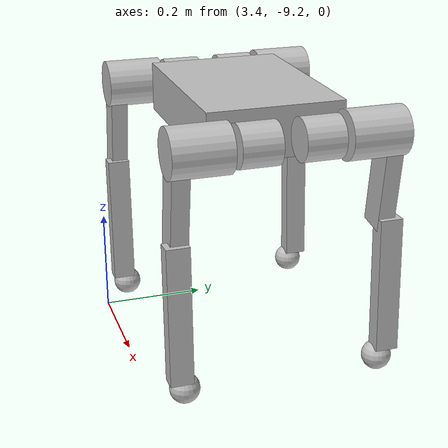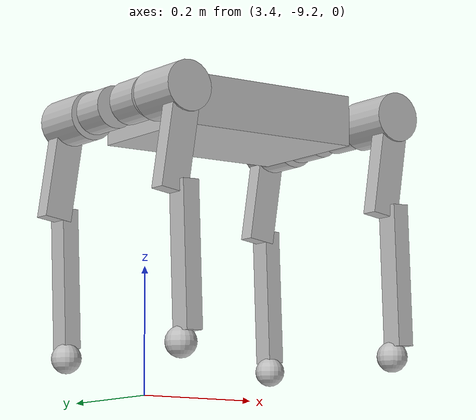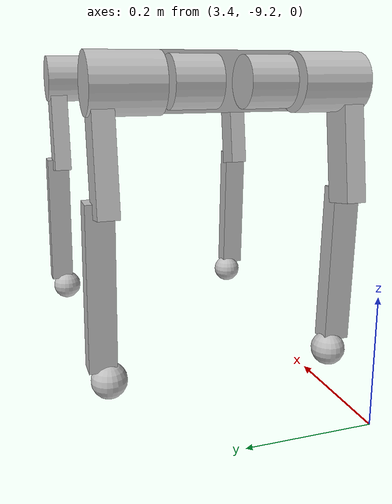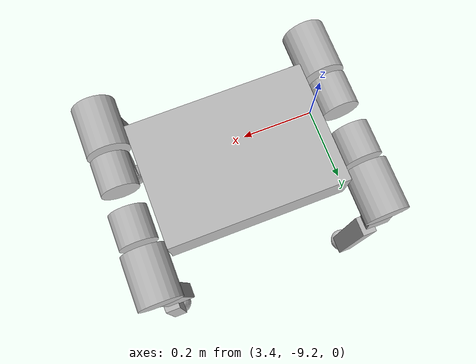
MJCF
<mujoco model="z2">
  <compiler angle="radian"/>
  <!-- 优化的仿真参数 -->
  <option timestep="0.005" iterations="50" solver="Newton" tolerance="1e-10"/>

  <!-- 默认参数设置 -->
  <default>
    <joint damping="0.1" frictionloss="0.01"/>
    <geom friction="0.8 0.02 0.01" margin="0.001" gap="0.0"/>
    <motor ctrllimited="true" ctrlrange="-33.5 33.5"/>
  </default>
  <!-- 资源 -->
  <asset>
    <texture name="grid" type="2d" builtin="checker" rgb1=".1 .2 .3" rgb2=".2 .3 .4" width="300" height="300"/>
    <material name="grid" texture="grid" texrepeat="8 8" reflectance=".2"/>
  </asset>
<worldbody>
    <body name="base_link" pos="3.7 -9.0 0.5">
      <freejoint name="floating_base"/>
      <camera name="chase_cam" pos="-3 0 3" xyaxes="0 -1 0 1 0 1"/>
      <inertial pos="-0.000191 0.0000032 0.0006969" mass="6.32" fullinertia="0.043000 0.094133 0.121805 0 0 0"/>

      <geom name="trunk" size="0.171 0.1185 0.0434996" pos="-0.0002 0 0.0006991" type="box" rgba="0.749024 0.749024 0.749024 1"/>

      <body name="FL_hip" pos="0.16 0.075 0">
        <inertial pos="0.0503824 -0.0220598 -0.0002227" mass="0.6" fullinertia="0.000554 0.000603 0.000641 0.000086 0.000005 -0.000002"/>
        <joint name="FL_hip_joint" pos="0 0 0" axis="1 0 0" range="-0.5 0.5" actuatorfrcrange="-30 30"/>
        <geom size="0.0366 0.0334" pos="0.057684 -0.0226742 0.0010791" quat="0.707107 0.707107 0 0" type="cylinder" rgba="0.752941 0.752941 0.752941 1"/>
        <body name="FL_thigh" pos="0.055 0.0842 0">
          <inertial pos="-0.007049 0.002918 -0.050395" mass="1.013" fullinertia="0.005164 0.004784 0.001313 0.000096 -0.000452 0.000863"/>
          <joint name="FL_thigh_joint" pos="0 0 0" axis="0 1 0" range="-0.1 3.2" actuatorfrcrange="-30 30"/>
          <geom size="0.0422 0.05025" pos="0 -0.012625 0" quat="0.707107 0.707107 0 0" type="cylinder" rgba="0.752941 0.752941 0.752941 1"/>
          <geom size="0.025 0.015 0.095" pos="-0.011032 0.0188 -0.077453" quat="0.997189 0 0.0749297 0" type="box" rgba="0.752941 0.752941 0.752941 1"/>
          <body name="FL_calf" pos="0 0.01475 -0.2">
            <inertial pos="0.0081239 0.0001028 -0.0992134" mass="0.1421" fullinertia="0.000888 0.000902 0.000025 0 0.000020 0.000001"/>
            <joint name="FL_calf_joint" pos="0 0 0" axis="0 1 0" range="-2.69653 -0.916298" actuatorfrcrange="-30 30"/>
            <geom size="0.12015 0.02 0.015" pos="0.002557 0.009165 -0.072349" quat="0.718746 0 0.695273 0" type="box" rgba="0.752941 0.752941 0.752941 1"/>
            <body name="FL_foot" pos="0 0.0002 -0.21012">
              <inertial pos="-0.0029924 -0.0000316 -0.0056685" mass="0.0241" fullinertia="0.000005 0.000005 0.000006 0 0.000001 0"/>
              <geom name="FL_foot" size="0.026" pos="0.000003 -0.00015 0.00064" rgba="0.752941 0.752941 0.752941 1" friction="1.2 0.05 0.01"/>
            </body>
          </body>
        </body>
      </body>
      <body name="RL_hip" pos="-0.16 0.075 0.0006991">
        <inertial pos="-0.0506619 -0.0222818 -0.0002469" mass="0.6" fullinertia="0.000554 0.000603 0.000641 -0.000085 -0.000005 -0.000002"/>
        <joint name="RL_hip_joint" pos="0 0 0" axis="1 0 0" range="-0.5 0.5" actuatorfrcrange="-30 30"/>
        <geom size="0.0366 0.0334" pos="-0.057684 -0.0226742 0.0010791" quat="0.707107 0.707107 0 0" type="cylinder" rgba="0.752941 0.752941 0.752941 1"/>
        <body name="RL_thigh" pos="-0.0556459 0.084 -0.0002675">
          <inertial pos="-0.007049 0.003118 -0.050395" mass="1.013" fullinertia="0.005164 0.004784 0.001313 0.000096 -0.000452 0.000863"/>
          <joint name="RL_thigh_joint" pos="0 0 0" axis="0 1 0" range="-0.1 3.2" actuatorfrcrange="-30 30"/>
          <geom size="0.0422 0.05025" pos="0 -0.012625 0" quat="0.707107 0.707107 0 0" type="cylinder" rgba="0.752941 0.752941 0.752941 1"/>
          <geom size="0.025 0.015 0.095" pos="-0.011032 0.0188 -0.077453" quat="0.997189 0 0.0749297 0" type="box" rgba="0.752941 0.752941 0.752941 1"/>
          <body name="RL_calf" pos="0 0.01495 -0.2">
            <inertial pos="0.0081239 0.0001028 -0.0992134" mass="0.1421" fullinertia="0.000888 0.000902 0.000025 0 0.000020 0.000001"/>
            <joint name="RL_calf_joint" pos="0 0 0" axis="0 1 0" range="-2.69653 -0.916298" actuatorfrcrange="-30 30"/>
            <geom size="0.12015 0.02 0.015" pos="0.002557 0.009165 -0.072349" quat="0.718746 0 0.695273 0" type="box" rgba="0.752941 0.752941 0.752941 1"/>
            <body name="RL_foot" pos="0 0.0002 -0.2101231">
              <inertial pos="-0.0029924 -0.0000316 -0.0056685" mass="0.0241" fullinertia="0.000005 0.000005 0.000006 0 0.000001 0"/>
              <geom name="RL_foot" size="0.026" pos="0.000003 -0.00015 0.00064" rgba="0.752941 0.752941 0.752941 1" friction="1.2 0.05 0.01"/>
            </body>
          </body>
        </body>
      </body>
      <body name="FR_hip" pos="0.16 -0.075 0">
        <inertial pos="0.0506296 0.0221701 -0.000239" mass="0.6" fullinertia="0.000554 0.000603 0.000641 -0.000086 0.000005 0.000002"/>
        <joint name="FR_hip_joint" pos="0 0 0" axis="1 0 0" range="-0.5 0.5" actuatorfrcrange="-30 30"/>
        <geom size="0.0366 0.0334" pos="0.057684 0.0226742 0.0010791" quat="0.707107 0.707107 0 0" type="cylinder" rgba="0.752941 0.752941 0.752941 1"/>
        <body name="FR_thigh" pos="0.055 -0.084 0">
          <inertial pos="-0.007071 -0.003119 -0.050404" mass="1.013" fullinertia="0.005163 0.004783 0.001312 -0.000094 -0.000451 -0.000862"/>
          <joint name="FR_thigh_joint" pos="0 0 0" axis="0 1 0" range="-0.1 3.2" actuatorfrcrange="-30 30"/>
          <geom size="0.0422 0.05025" pos="0 0.012625 0" quat="0.707107 0.707107 0 0" type="cylinder" rgba="0.752941 0.752941 0.752941 1"/>
          <geom size="0.025 0.015 0.095" pos="-0.011032 -0.0188 -0.077453" quat="0.997189 0 0.0749297 0" type="box" rgba="0.752941 0.752941 0.752941 1"/>
          <body name="FR_calf" pos="0 -0.01495 -0.2">
            <inertial pos="0.0081241 -0.0001029 -0.0992124" mass="0.1421" fullinertia="0.000888 0.000902 0.000025 0 0.000020 -0.000001"/>
            <joint name="FR_calf_joint" pos="0 0 0" axis="0 1 0" range="-2.69653 -0.916298" actuatorfrcrange="-30 30"/>
            <geom size="0.12015 0.02 0.015" pos="0.002557 -0.009165 -0.072349" quat="0.718746 0 0.695273 0" type="box" rgba="0.752941 0.752941 0.752941 1"/>
            <body name="FR_foot" pos="0 -0.0002 -0.21012">
              <inertial pos="-0.0029924 0.0000316 -0.0056685" mass="0.0241" fullinertia="0.000005 0.000005 0.000006 0 0.000001 0"/>
              <geom name="FR_foot" size="0.026" pos="0.000003 0.00015 0.00064" rgba="0.752941 0.752941 0.752941 1" friction="1.2 0.05 0.01"/>
            </body>
          </body>
        </body>
      </body>
      <body name="RR_hip" pos="-0.16 -0.075 0">
        <inertial pos="-0.0506297 0.0221701 -0.0002391" mass="0.6" fullinertia="0.000554 0.000603 0.000641 0.000086 -0.000005 0.000002"/>
        <joint name="RR_hip_joint" pos="0 0 0" axis="1 0 0" range="-0.5 0.5" actuatorfrcrange="-30 30"/>
        <geom size="0.0366 0.0334" pos="-0.057684 0.0226742 0.0010791" quat="0.707107 0.707107 0 0" type="cylinder" rgba="0.752941 0.752941 0.752941 1"/>
        <body name="RR_thigh" pos="-0.055 -0.0842 0">
          <inertial pos="-0.006854 -0.003352 -0.049844" mass="1.013" fullinertia="0.005163 0.004783 0.001312 -0.000094 -0.000451 -0.000862"/>
          <joint name="RR_thigh_joint" pos="0 0 0" axis="0 1 0" range="-0.1 3.2" actuatorfrcrange="-30 30"/>
          <geom size="0.0422 0.05025" pos="0 0.012625 0" quat="0.707107 0.707107 0 0" type="cylinder" rgba="0.752941 0.752941 0.752941 1"/>
          <geom size="0.025 0.015 0.095" pos="-0.011032 -0.0188 -0.077453" quat="0.997189 0 0.0749297 0" type="box" rgba="0.752941 0.752941 0.752941 1"/>
          <body name="RR_calf" pos="0 -0.01475 -0.2">
            <inertial pos="0.0081241 -0.0001029 -0.0992124" mass="0.1421" fullinertia="0.000888 0.000902 0.000025 0 0.000020 -0.000001"/>
            <joint name="RR_calf_joint" pos="0 0 0" axis="0 1 0" range="-2.69653 -0.916298" actuatorfrcrange="-30 30"/>
            <geom size="0.12015 0.02 0.015" pos="0.002557 -0.009165 -0.072349" quat="0.718746 0 0.695273 0" type="box" rgba="0.752941 0.752941 0.752941 1"/>
            <body name="RR_foot" pos="0 -0.0002 -0.21012">
              <inertial pos="-0.0029924 0.0000316 -0.0056685" mass="0.0241" fullinertia="0.000005 0.000005 0.000006 0 0.000001 0"/>
              <geom name="RR_foot" size="0.026" pos="0.000003 0.00015 0.00064" rgba="0.752941 0.752941 0.752941 1" friction="1.2 0.05 0.01"/>
            </body>
          </body>
        </body>
      </body>
    </body>
  </worldbody>
  <actuator>
    <!-- 前左腿电机 -->
    <motor name="FL_hip_motor" joint="FL_hip_joint" gear="1"/>
    <motor name="FL_thigh_motor" joint="FL_thigh_joint" gear="1"/>
    <motor name="FL_calf_motor" joint="FL_calf_joint" gear="1"/>

    <!-- 后左腿电机 -->
    <motor name="RL_hip_motor" joint="RL_hip_joint" gear="1"/>
    <motor name="RL_thigh_motor" joint="RL_thigh_joint" gear="1"/>
    <motor name="RL_calf_motor" joint="RL_calf_joint" gear="1"/>

    <!-- 前右腿电机 -->
    <motor name="FR_hip_motor" joint="FR_hip_joint" gear="1"/>
    <motor name="FR_thigh_motor" joint="FR_thigh_joint" gear="1"/>
    <motor name="FR_calf_motor" joint="FR_calf_joint" gear="1"/>

    <!-- 后右腿电机 -->
    <motor name="RR_hip_motor" joint="RR_hip_joint" gear="1"/>
    <motor name="RR_thigh_motor" joint="RR_thigh_joint" gear="1"/>
    <motor name="RR_calf_motor" joint="RR_calf_joint" gear="1"/>
  </actuator>
</mujoco>
